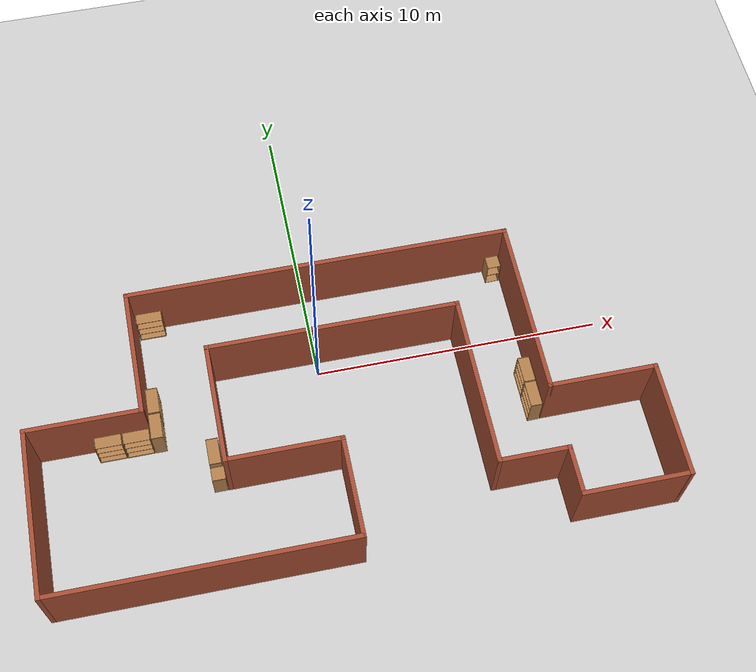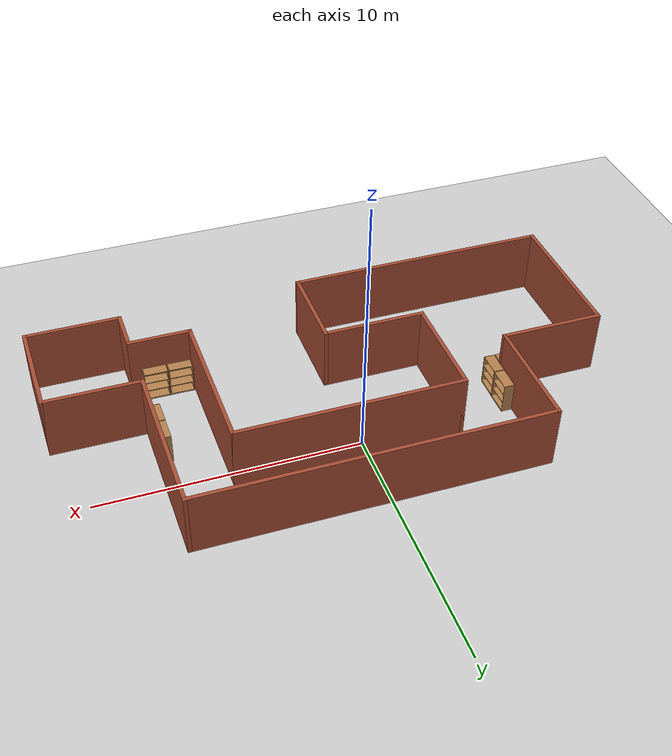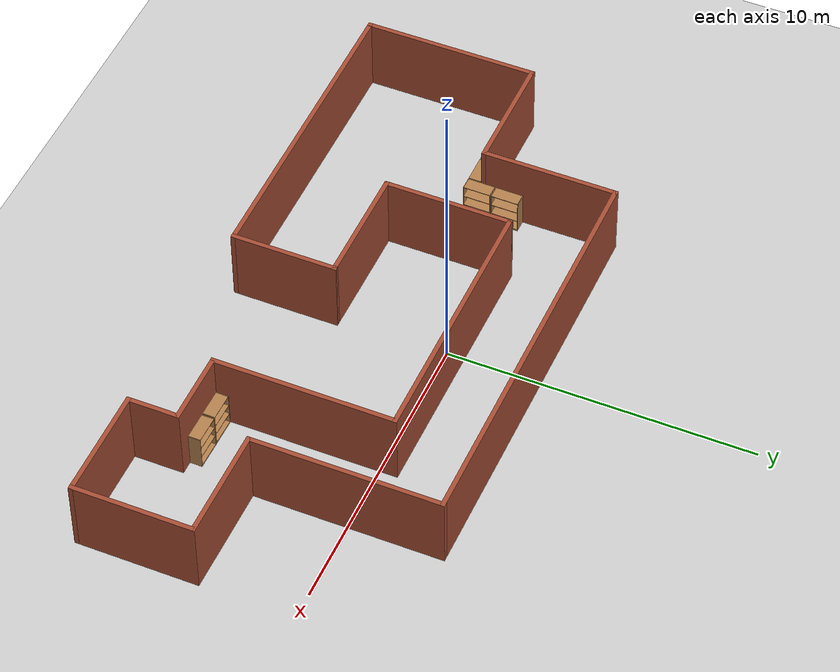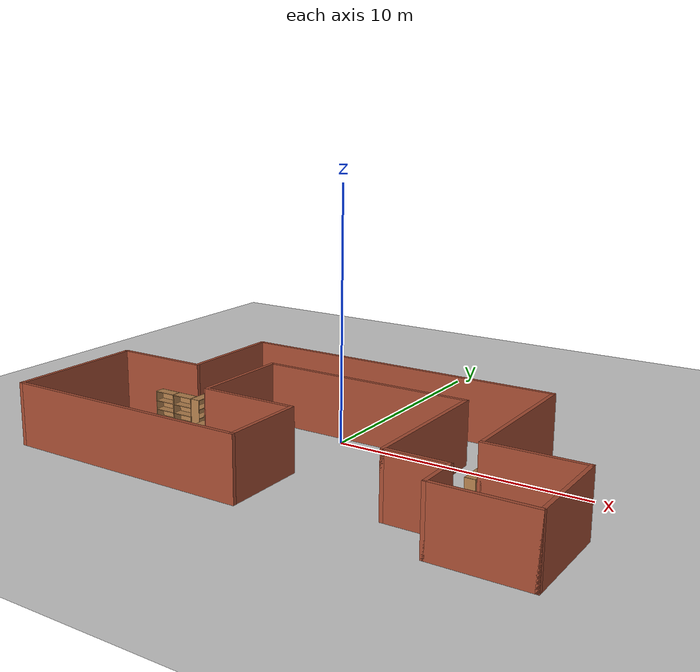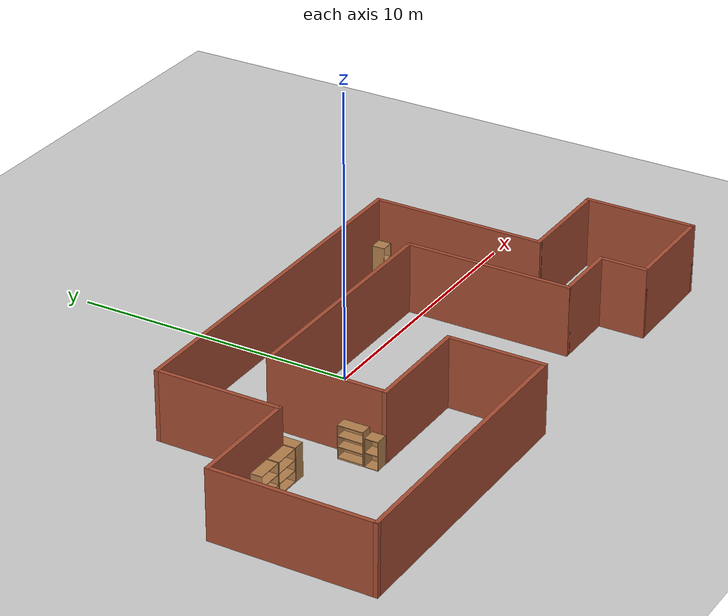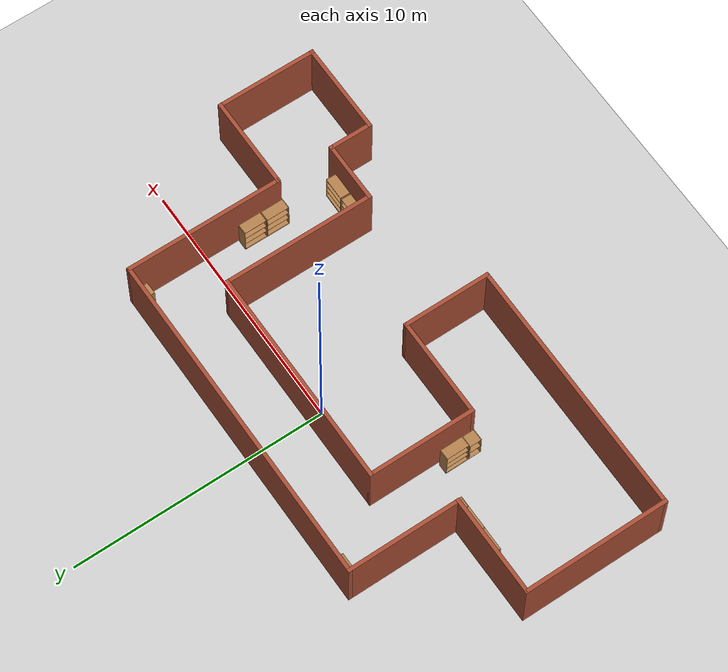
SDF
<sdf version="1.7">
 <world name="default">
  <light name="sun" type="directional">
   <pose>0 0 10 0 -0 0</pose>
   <diffuse>0.8 0.8 0.8 1</diffuse>
   <specular>0.2 0.2 0.2 1</specular>
   <attenuation>
    <range>1000</range>
    <constant>0.9</constant>
    <linear>0.01</linear>
    <quadratic>0.001</quadratic>
   </attenuation>
   <direction>-0.5 0.1 -0.9</direction>
   <spot><inner_angle>0</inner_angle><outer_angle>0</outer_angle><falloff>0</falloff></spot>
  </light>
  <model name="ground_plane">
   <static>1</static>
   <link name="link">
    <collision name="collision">
     <geometry><plane><normal>0 0 1</normal><size>100 100</size></plane></geometry>
     <surface><friction><ode><mu>100</mu><mu2>50</mu2></ode></friction></surface>
    </collision>
    <visual name="visual">
     <cast_shadows>0</cast_shadows>
     <geometry><plane><normal>0 0 1</normal><size>100 100</size></plane></geometry>
     <material>
      <script><uri>file://media/materials/scripts/gazebo.material</uri><name>Gazebo/Grey</name></script>
     </material>
    </visual>
   </link>
  </model>
  <gravity>0 0 -9.8</gravity>
  <magnetic_field>6e-06 2.3e-05 -4.2e-05</magnetic_field>
  <atmosphere type="adiabatic"/>
  <physics type="ode">
   <max_step_size>0.001</max_step_size>
   <real_time_factor>1</real_time_factor>
   <real_time_update_rate>1000</real_time_update_rate>
  </physics>
  <scene><ambient>0.4 0.4 0.4 1</ambient><background>0.7 0.7 0.7 1</background><shadows>1</shadows></scene>
  <spherical_coordinates>
   <surface_model>EARTH_WGS84</surface_model>
   <latitude_deg>0</latitude_deg>
   <longitude_deg>0</longitude_deg>
   <elevation>0</elevation>
   <heading_deg>0</heading_deg>
  </spherical_coordinates>
  <model name="env1">
   <pose>0.474 -1.97851 0 0 -0 0</pose>
   <link name="Wall_12">
    <collision name="Wall_12_Collision">
     <geometry><box><size>13.4468 0.15 2.5</size></box></geometry>
     <pose>0 0 1.25 0 -0 0</pose>
    </collision>
    <visual name="Wall_12_Visual">
     <pose>0 0 1.25 0 -0 0</pose>
     <geometry><box><size>13.4468 0.15 2.5</size></box></geometry>
     <material>
      <script><uri>file://media/materials/scripts/gazebo.material</uri><name>Gazebo/Bricks</name></script>
      <ambient>1 1 1 1</ambient>
     </material>
     <meta><layer>0</layer></meta>
    </visual>
    <pose>0.125 4.975 0 0 -0 3.14159</pose>
   </link>
   <link name="Wall_18">
    <collision name="Wall_18_Collision">
     <geometry><box><size>6.25 0.15 2.5</size></box></geometry>
     <pose>0 0 1.25 0 -0 0</pose>
    </collision>
    <visual name="Wall_18_Visual">
     <pose>0 0 1.25 0 -0 0</pose>
     <geometry><box><size>6.25 0.15 2.5</size></box></geometry>
     <material>
      <script><uri>file://media/materials/scripts/gazebo.material</uri><name>Gazebo/Bricks</name></script>
      <ambient>1 1 1 1</ambient>
     </material>
     <meta><layer>0</layer></meta>
    </visual>
    <pose>6.7734 1.925 0 0 -0 -1.5708</pose>
   </link>
   <link name="Wall_19">
    <collision name="Wall_19_Collision">
     <geometry><box><size>3.75 0.15 2.5</size></box></geometry>
     <pose>0 0 1.25 0 -0 0</pose>
    </collision>
    <visual name="Wall_19_Visual">
     <pose>0 0 1.25 0 -0 0</pose>
     <geometry><box><size>3.75 0.15 2.5</size></box></geometry>
     <material>
      <script><uri>file://media/materials/scripts/gazebo.material</uri><name>Gazebo/Bricks</name></script>
      <ambient>1 1 1 1</ambient>
     </material>
     <meta><layer>0</layer></meta>
    </visual>
    <pose>8.5734 -1.125 0 0 -0 0</pose>
   </link>
   <link name="Wall_20">
    <collision name="Wall_20_Collision">
     <geometry><box><size>4 0.15 2.5</size></box></geometry>
     <pose>0 0 1.25 0 -0 0</pose>
    </collision>
    <visual name="Wall_20_Visual">
     <pose>0 0 1.25 0 -0 0</pose>
     <geometry><box><size>4 0.15 2.5</size></box></geometry>
     <material>
      <script><uri>file://media/materials/scripts/gazebo.material</uri><name>Gazebo/Bricks</name></script>
      <ambient>1 1 1 1</ambient>
     </material>
     <meta><layer>0</layer></meta>
    </visual>
    <pose>10.3734 -3.05 0 0 -0 -1.5708</pose>
   </link>
   <link name="Wall_23">
    <collision name="Wall_23_Collision">
     <geometry><box><size>1.75 0.15 2.5</size></box></geometry>
     <pose>0 0 1.25 0 -0 0</pose>
    </collision>
    <visual name="Wall_23_Visual">
     <pose>0 0 1.25 0 -0 0</pose>
     <geometry><box><size>1.75 0.15 2.5</size></box></geometry>
     <material>
      <script><uri>file://media/materials/scripts/gazebo.material</uri><name>Gazebo/Bricks</name></script>
      <ambient>1 1 1 1</ambient>
     </material>
     <meta><layer>0</layer></meta>
    </visual>
    <pose>6.8 -4.175 0 0 -0 -1.5708</pose>
   </link>
   <link name="Wall_24">
    <collision name="Wall_24_Collision">
     <geometry><box><size>3.7234 0.15 2.5</size></box></geometry>
     <pose>0 0 1.25 0 -0 0</pose>
    </collision>
    <visual name="Wall_24_Visual">
     <pose>0 0 1.25 0 -0 0</pose>
     <geometry><box><size>3.7234 0.15 2.5</size></box></geometry>
     <material>
      <script><uri>file://media/materials/scripts/gazebo.material</uri><name>Gazebo/Bricks</name></script>
      <ambient>1 1 1 1</ambient>
     </material>
     <meta><layer>0</layer></meta>
    </visual>
    <pose>8.5867 -4.975 0 0 -0 0</pose>
   </link>
   <link name="Wall_3">
    <collision name="Wall_3_Collision">
     <geometry><box><size>4.25 0.15 2.5</size></box></geometry>
     <pose>0 0 1.25 0 -0 0</pose>
    </collision>
    <visual name="Wall_3_Visual">
     <pose>0 0 1.25 0 -0 0</pose>
     <geometry><box><size>4.25 0.15 2.5</size></box></geometry>
     <material>
      <script><uri>file://media/materials/scripts/gazebo.material</uri><name>Gazebo/Bricks</name></script>
      <ambient>1 1 1 1</ambient>
     </material>
     <meta><layer>0</layer></meta>
    </visual>
    <pose>-4.1234 0.425 0 0 -0 1.5708</pose>
   </link>
   <link name="Wall_32">
    <collision name="Wall_32_Collision">
     <geometry><box><size>4.5 0.15 2.5</size></box></geometry>
     <pose>0 0 1.25 0 -0 0</pose>
    </collision>
    <visual name="Wall_32_Visual">
     <pose>0 0 1.25 0 -0 0</pose>
     <geometry><box><size>4.5 0.15 2.5</size></box></geometry>
     <material>
      <script><uri>file://media/materials/scripts/gazebo.material</uri><name>Gazebo/Bricks</name></script>
      <ambient>1 1 1 1</ambient>
     </material>
     <meta><layer>0</layer></meta>
    </visual>
    <pose>-6.5234 2.8 0 0 -0 -1.5708</pose>
   </link>
   <link name="Wall_33">
    <collision name="Wall_33_Collision">
     <geometry><box><size>4 0.15 2.5</size></box></geometry>
     <pose>0 0 1.25 0 -0 0</pose>
    </collision>
    <visual name="Wall_33_Visual">
     <pose>0 0 1.25 0 -0 0</pose>
     <geometry><box><size>4 0.15 2.5</size></box></geometry>
     <material>
      <script><uri>file://media/materials/scripts/gazebo.material</uri><name>Gazebo/Bricks</name></script>
      <ambient>1 1 1 1</ambient>
     </material>
     <meta><layer>0</layer></meta>
    </visual>
    <pose>-8.4484 0.625 0 0 -0 3.14159</pose>
   </link>
   <link name="Wall_35">
    <collision name="Wall_35_Collision">
     <geometry><box><size>4 0.15 2.5</size></box></geometry>
     <pose>0 0 1.25 0 -0 0</pose>
    </collision>
    <visual name="Wall_35_Visual">
     <pose>0 0 1.25 0 -0 0</pose>
     <geometry><box><size>4 0.15 2.5</size></box></geometry>
     <material>
      <script><uri>file://media/materials/scripts/gazebo.material</uri><name>Gazebo/Bricks</name></script>
      <ambient>1 1 1 1</ambient>
     </material>
     <meta><layer>0</layer></meta>
    </visual>
    <pose>-2.1984 -1.625 0 0 -0 0</pose>
   </link>
   <link name="Wall_4">
    <collision name="Wall_4_Collision">
     <geometry><box><size>8.75 0.15 2.5</size></box></geometry>
     <pose>0 0 1.25 0 -0 0</pose>
    </collision>
    <visual name="Wall_4_Visual">
     <pose>0 0 1.25 0 -0 0</pose>
     <geometry><box><size>8.75 0.15 2.5</size></box></geometry>
     <material>
      <script><uri>file://media/materials/scripts/gazebo.material</uri><name>Gazebo/Bricks</name></script>
      <ambient>1 1 1 1</ambient>
     </material>
     <meta><layer>0</layer></meta>
    </visual>
    <pose>0.1766 2.475 0 0 -0 0</pose>
   </link>
   <link name="Wall_40">
    <collision name="Wall_40_Collision">
     <geometry><box><size>3.5 0.15 2.5</size></box></geometry>
     <pose>0 0 1.25 0 -0 0</pose>
    </collision>
    <visual name="Wall_40_Visual">
     <pose>0 0 1.25 0 -0 0</pose>
     <geometry><box><size>3.5 0.15 2.5</size></box></geometry>
     <material>
      <script><uri>file://media/materials/scripts/gazebo.material</uri><name>Gazebo/Bricks</name></script>
      <ambient>1 1 1 1</ambient>
     </material>
     <meta><layer>0</layer></meta>
    </visual>
    <pose>-0.2734 -3.3 0 0 -0 -1.5708</pose>
   </link>
   <link name="Wall_42">
    <collision name="Wall_42_Collision">
     <geometry><box><size>10.25 0.15 2.5</size></box></geometry>
     <pose>0 0 1.25 0 -0 0</pose>
    </collision>
    <visual name="Wall_42_Visual">
     <pose>0 0 1.25 0 -0 0</pose>
     <geometry><box><size>10.25 0.15 2.5</size></box></geometry>
     <material>
      <script><uri>file://media/materials/scripts/gazebo.material</uri><name>Gazebo/Bricks</name></script>
      <ambient>1 1 1 1</ambient>
     </material>
     <meta><layer>0</layer></meta>
    </visual>
    <pose>-5.3234 -4.975 0 0 -0 3.14159</pose>
   </link>
   <link name="Wall_43">
    <collision name="Wall_43_Collision">
     <geometry><box><size>5.75 0.15 2.5</size></box></geometry>
     <pose>0 0 1.25 0 -0 0</pose>
    </collision>
    <visual name="Wall_43_Visual">
     <pose>0 0 1.25 0 -0 0</pose>
     <geometry><box><size>5.75 0.15 2.5</size></box></geometry>
     <material>
      <script><uri>file://media/materials/scripts/gazebo.material</uri><name>Gazebo/Bricks</name></script>
      <ambient>1 1 1 1</ambient>
     </material>
     <meta><layer>0</layer></meta>
    </visual>
    <pose>-10.3734 -2.175 0 0 -0 1.5708</pose>
   </link>
   <link name="Wall_5">
    <collision name="Wall_5_Collision">
     <geometry><box><size>6 0.15 2.5</size></box></geometry>
     <pose>0 0 1.25 0 -0 0</pose>
    </collision>
    <visual name="Wall_5_Visual">
     <pose>0 0 1.25 0 -0 0</pose>
     <geometry><box><size>6 0.15 2.5</size></box></geometry>
     <material>
      <script><uri>file://media/materials/scripts/gazebo.material</uri><name>Gazebo/Bricks</name></script>
      <ambient>1 1 1 1</ambient>
     </material>
     <meta><layer>0</layer></meta>
    </visual>
    <pose>4.4766 -0.45 0 0 -0 -1.5708</pose>
   </link>
   <link name="Wall_7">
    <collision name="Wall_7_Collision">
     <geometry><box><size>2.4734 0.15 2.5</size></box></geometry>
     <pose>0 0 1.25 0 -0 0</pose>
    </collision>
    <visual name="Wall_7_Visual">
     <pose>0 0 1.25 0 -0 0</pose>
     <geometry><box><size>2.4734 0.15 2.5</size></box></geometry>
     <material>
      <script><uri>file://media/materials/scripts/gazebo.material</uri><name>Gazebo/Bricks</name></script>
      <ambient>1 1 1 1</ambient>
     </material>
     <meta><layer>0</layer></meta>
    </visual>
    <pose>5.6383 -3.375 0 0 -0 0</pose>
   </link>
   <static>1</static>
  </model>
  <model name="bookshelf">
   <static>1</static>
   <link name="link">
    <inertial><mass>1</mass></inertial>
    <collision name="back">
     <pose>0 0.005 0.6 0 -0 0</pose>
     <geometry><box><size>0.9 0.01 1.2</size></box></geometry>
    </collision>
    <visual name="visual1">
     <pose>0 0.005 0.6 0 -0 0</pose>
     <geometry><box><size>0.9 0.01 1.2</size></box></geometry>
     <material>
      <script><uri>file://media/materials/scripts/gazebo.material</uri><name>Gazebo/Wood</name></script>
     </material>
    </visual>
    <collision name="left_side">
     <pose>0.45 -0.195 0.6 0 -0 0</pose>
     <geometry><box><size>0.02 0.4 1.2</size></box></geometry>
    </collision>
    <visual name="visual2">
     <pose>0.45 -0.195 0.6 0 -0 0</pose>
     <geometry><box><size>0.02 0.4 1.2</size></box></geometry>
     <material>
      <script><uri>file://media/materials/scripts/gazebo.material</uri><name>Gazebo/Wood</name></script>
     </material>
    </visual>
    <collision name="right_side">
     <pose>-0.45 -0.195 0.6 0 -0 0</pose>
     <geometry><box><size>0.02 0.4 1.2</size></box></geometry>
    </collision>
    <visual name="visual3">
     <pose>-0.45 -0.195 0.6 0 -0 0</pose>
     <geometry><box><size>0.02 0.4 1.2</size></box></geometry>
     <material>
      <script><uri>file://media/materials/scripts/gazebo.material</uri><name>Gazebo/Wood</name></script>
     </material>
    </visual>
    <collision name="bottom">
     <pose>0 -0.195 0.03 0 -0 0</pose>
     <geometry><box><size>0.88 0.4 0.06</size></box></geometry>
    </collision>
    <visual name="visual4">
     <pose>0 -0.195 0.03 0 -0 0</pose>
     <geometry><box><size>0.88 0.4 0.06</size></box></geometry>
     <material>
      <script><uri>file://media/materials/scripts/gazebo.material</uri><name>Gazebo/Wood</name></script>
     </material>
    </visual>
    <collision name="top">
     <pose>0 -0.195 1.19 0 -0 0</pose>
     <geometry><box><size>0.88 0.4 0.02</size></box></geometry>
    </collision>
    <visual name="visual5">
     <pose>0 -0.195 1.19 0 -0 0</pose>
     <geometry><box><size>0.88 0.4 0.02</size></box></geometry>
     <material>
      <script><uri>file://media/materials/scripts/gazebo.material</uri><name>Gazebo/Wood</name></script>
     </material>
    </visual>
    <collision name="low_shelf">
     <pose>0 -0.195 0.43 0 -0 0</pose>
     <geometry><box><size>0.88 0.4 0.02</size></box></geometry>
    </collision>
    <visual name="visual6">
     <pose>0 -0.195 0.43 0 -0 0</pose>
     <geometry><box><size>0.88 0.4 0.02</size></box></geometry>
     <material>
      <script><uri>file://media/materials/scripts/gazebo.material</uri><name>Gazebo/Wood</name></script>
     </material>
    </visual>
    <collision name="high_shelf">
     <pose>0 -0.195 0.8 0 -0 0</pose>
     <geometry><box><size>0.88 0.4 0.02</size></box></geometry>
    </collision>
    <visual name="visual7">
     <pose>0 -0.195 0.8 0 -0 0</pose>
     <geometry><box><size>0.88 0.4 0.02</size></box></geometry>
     <material>
      <script><uri>file://media/materials/scripts/gazebo.material</uri><name>Gazebo/Wood</name></script>
     </material>
    </visual>
   </link>
   <pose>-6.45414 -1.46584 0 0 -0 0.002664</pose>
  </model>
  <model name="cabinet">
   <static>1</static>
   <link name="cabinet_bottom_plate">
    <inertial>
     <pose>0 0 -1 0 -0 0</pose>
     <inertia><ixx>2.05</ixx><ixy>0</ixy><ixz>0</ixz><iyy>2.05</iyy><iyz>0</iyz><izz>2.05</izz></inertia>
     <mass>25</mass>
    </inertial>
    <collision name="cabinet_bottom_plate_geom">
     <pose>0 0 0.01 0 -0 0</pose>
     <geometry><box><size>0.45 0.45 0.02</size></box></geometry>
    </collision>
    <visual name="cabinet_bottom_plate_geom_visual">
     <pose>0 0 0.01 0 -0 0</pose>
     <geometry><box><size>0.45 0.45 0.02</size></box></geometry>
     <material>
      <script><uri>file://media/materials/scripts/gazebo.material</uri><name>Gazebo/Wood</name></script>
     </material>
    </visual>
    <collision name="cabinet_bottom_plate_geom_cabinet_back_plate">
     <pose>0.235 0 0.51 0 -0 0</pose>
     <geometry><box><size>0.02 0.45 1.02</size></box></geometry>
    </collision>
    <visual name="cabinet_bottom_plate_geom_cabinet_back_plate_visual">
     <pose>0.235 0 0.51 0 -0 0</pose>
     <geometry><box><size>0.02 0.45 1.02</size></box></geometry>
     <material>
      <script><uri>file://media/materials/scripts/gazebo.material</uri><name>Gazebo/Wood</name></script>
     </material>
    </visual>
    <collision name="cabinet_bottom_plate_geom_cabinet_left_plate">
     <pose>0 0.235 0.51 0 -0 0</pose>
     <geometry><box><size>0.45 0.02 1.02</size></box></geometry>
    </collision>
    <visual name="cabinet_bottom_plate_geom_cabinet_left_plate_visual">
     <pose>0 0.235 0.51 0 -0 0</pose>
     <geometry><box><size>0.45 0.02 1.02</size></box></geometry>
     <material>
      <script><uri>file://media/materials/scripts/gazebo.material</uri><name>Gazebo/Wood</name></script>
     </material>
    </visual>
    <collision name="cabinet_bottom_plate_geom_cabinet_middle_plate">
     <pose>0 0 0.51 0 -0 0</pose>
     <geometry><box><size>0.45 0.45 0.02</size></box></geometry>
    </collision>
    <visual name="cabinet_bottom_plate_geom_cabinet_middle_plate_visual">
     <pose>0 0 0.51 0 -0 0</pose>
     <geometry><box><size>0.45 0.45 0.02</size></box></geometry>
     <material>
      <script><uri>file://media/materials/scripts/gazebo.material</uri><name>Gazebo/Wood</name></script>
     </material>
    </visual>
    <collision name="cabinet_bottom_plate_geom_cabinet_right_plate">
     <pose>0 -0.235 0.51 0 -0 0</pose>
     <geometry><box><size>0.45 0.02 1.02</size></box></geometry>
    </collision>
    <visual name="cabinet_bottom_plate_geom_cabinet_right_plate_visual">
     <pose>0 -0.235 0.51 0 -0 0</pose>
     <geometry><box><size>0.45 0.02 1.02</size></box></geometry>
     <material>
      <script><uri>file://media/materials/scripts/gazebo.material</uri><name>Gazebo/Wood</name></script>
     </material>
    </visual>
    <collision name="cabinet_bottom_plate_geom_cabinet_top_plate">
     <pose>0 0 1.01 0 -0 0</pose>
     <geometry><box><size>0.45 0.45 0.02</size></box></geometry>
    </collision>
    <visual name="cabinet_bottom_plate_geom_cabinet_top_plate_visual">
     <pose>0 0 1.01 0 -0 0</pose>
     <geometry><box><size>0.45 0.45 0.02</size></box></geometry>
     <material>
      <script><uri>file://media/materials/scripts/gazebo.material</uri><name>Gazebo/Wood</name></script>
     </material>
    </visual>
   </link>
   <pose>-3.98 -3.42601 0 0 -0 0</pose>
  </model>
  <model name="bookshelf_clone">
   <static>1</static>
   <link name="link">
    <inertial><mass>1</mass></inertial>
    <collision name="back">
     <pose>0 0.005 0.6 0 -0 0</pose>
     <geometry><box><size>0.9 0.01 1.2</size></box></geometry>
    </collision>
    <visual name="visual1">
     <pose>0 0.005 0.6 0 -0 0</pose>
     <geometry><box><size>0.9 0.01 1.2</size></box></geometry>
     <material>
      <script><uri>file://media/materials/scripts/gazebo.material</uri><name>Gazebo/Wood</name></script>
     </material>
    </visual>
    <collision name="left_side">
     <pose>0.45 -0.195 0.6 0 -0 0</pose>
     <geometry><box><size>0.02 0.4 1.2</size></box></geometry>
    </collision>
    <visual name="visual2">
     <pose>0.45 -0.195 0.6 0 -0 0</pose>
     <geometry><box><size>0.02 0.4 1.2</size></box></geometry>
     <material>
      <script><uri>file://media/materials/scripts/gazebo.material</uri><name>Gazebo/Wood</name></script>
     </material>
    </visual>
    <collision name="right_side">
     <pose>-0.45 -0.195 0.6 0 -0 0</pose>
     <geometry><box><size>0.02 0.4 1.2</size></box></geometry>
    </collision>
    <visual name="visual3">
     <pose>-0.45 -0.195 0.6 0 -0 0</pose>
     <geometry><box><size>0.02 0.4 1.2</size></box></geometry>
     <material>
      <script><uri>file://media/materials/scripts/gazebo.material</uri><name>Gazebo/Wood</name></script>
     </material>
    </visual>
    <collision name="bottom">
     <pose>0 -0.195 0.03 0 -0 0</pose>
     <geometry><box><size>0.88 0.4 0.06</size></box></geometry>
    </collision>
    <visual name="visual4">
     <pose>0 -0.195 0.03 0 -0 0</pose>
     <geometry><box><size>0.88 0.4 0.06</size></box></geometry>
     <material>
      <script><uri>file://media/materials/scripts/gazebo.material</uri><name>Gazebo/Wood</name></script>
     </material>
    </visual>
    <collision name="top">
     <pose>0 -0.195 1.19 0 -0 0</pose>
     <geometry><box><size>0.88 0.4 0.02</size></box></geometry>
    </collision>
    <visual name="visual5">
     <pose>0 -0.195 1.19 0 -0 0</pose>
     <geometry><box><size>0.88 0.4 0.02</size></box></geometry>
     <material>
      <script><uri>file://media/materials/scripts/gazebo.material</uri><name>Gazebo/Wood</name></script>
     </material>
    </visual>
    <collision name="low_shelf">
     <pose>0 -0.195 0.43 0 -0 0</pose>
     <geometry><box><size>0.88 0.4 0.02</size></box></geometry>
    </collision>
    <visual name="visual6">
     <pose>0 -0.195 0.43 0 -0 0</pose>
     <geometry><box><size>0.88 0.4 0.02</size></box></geometry>
     <material>
      <script><uri>file://media/materials/scripts/gazebo.material</uri><name>Gazebo/Wood</name></script>
     </material>
    </visual>
    <collision name="high_shelf">
     <pose>0 -0.195 0.8 0 -0 0</pose>
     <geometry><box><size>0.88 0.4 0.02</size></box></geometry>
    </collision>
    <visual name="visual7">
     <pose>0 -0.195 0.8 0 -0 0</pose>
     <geometry><box><size>0.88 0.4 0.02</size></box></geometry>
     <material>
      <script><uri>file://media/materials/scripts/gazebo.material</uri><name>Gazebo/Wood</name></script>
     </material>
    </visual>
   </link>
   <pose>-7.38846 -1.46061 0 0 -0 0</pose>
  </model>
  <model name="bookshelf_clone_0">
   <static>1</static>
   <link name="link">
    <inertial><mass>1</mass></inertial>
    <collision name="back">
     <pose>0 0.005 0.6 0 -0 0</pose>
     <geometry><box><size>0.9 0.01 1.2</size></box></geometry>
    </collision>
    <visual name="visual1">
     <pose>0 0.005 0.6 0 -0 0</pose>
     <geometry><box><size>0.9 0.01 1.2</size></box></geometry>
     <material>
      <script><uri>file://media/materials/scripts/gazebo.material</uri><name>Gazebo/Wood</name></script>
     </material>
    </visual>
    <collision name="left_side">
     <pose>0.45 -0.195 0.6 0 -0 0</pose>
     <geometry><box><size>0.02 0.4 1.2</size></box></geometry>
    </collision>
    <visual name="visual2">
     <pose>0.45 -0.195 0.6 0 -0 0</pose>
     <geometry><box><size>0.02 0.4 1.2</size></box></geometry>
     <material>
      <script><uri>file://media/materials/scripts/gazebo.material</uri><name>Gazebo/Wood</name></script>
     </material>
    </visual>
    <collision name="right_side">
     <pose>-0.45 -0.195 0.6 0 -0 0</pose>
     <geometry><box><size>0.02 0.4 1.2</size></box></geometry>
    </collision>
    <visual name="visual3">
     <pose>-0.45 -0.195 0.6 0 -0 0</pose>
     <geometry><box><size>0.02 0.4 1.2</size></box></geometry>
     <material>
      <script><uri>file://media/materials/scripts/gazebo.material</uri><name>Gazebo/Wood</name></script>
     </material>
    </visual>
    <collision name="bottom">
     <pose>0 -0.195 0.03 0 -0 0</pose>
     <geometry><box><size>0.88 0.4 0.06</size></box></geometry>
    </collision>
    <visual name="visual4">
     <pose>0 -0.195 0.03 0 -0 0</pose>
     <geometry><box><size>0.88 0.4 0.06</size></box></geometry>
     <material>
      <script><uri>file://media/materials/scripts/gazebo.material</uri><name>Gazebo/Wood</name></script>
     </material>
    </visual>
    <collision name="top">
     <pose>0 -0.195 1.19 0 -0 0</pose>
     <geometry><box><size>0.88 0.4 0.02</size></box></geometry>
    </collision>
    <visual name="visual5">
     <pose>0 -0.195 1.19 0 -0 0</pose>
     <geometry><box><size>0.88 0.4 0.02</size></box></geometry>
     <material>
      <script><uri>file://media/materials/scripts/gazebo.material</uri><name>Gazebo/Wood</name></script>
     </material>
    </visual>
    <collision name="low_shelf">
     <pose>0 -0.195 0.43 0 -0 0</pose>
     <geometry><box><size>0.88 0.4 0.02</size></box></geometry>
    </collision>
    <visual name="visual6">
     <pose>0 -0.195 0.43 0 -0 0</pose>
     <geometry><box><size>0.88 0.4 0.02</size></box></geometry>
     <material>
      <script><uri>file://media/materials/scripts/gazebo.material</uri><name>Gazebo/Wood</name></script>
     </material>
    </visual>
    <collision name="high_shelf">
     <pose>0 -0.195 0.8 0 -0 0</pose>
     <geometry><box><size>0.88 0.4 0.02</size></box></geometry>
    </collision>
    <visual name="visual7">
     <pose>0 -0.195 0.8 0 -0 0</pose>
     <geometry><box><size>0.88 0.4 0.02</size></box></geometry>
     <material>
      <script><uri>file://media/materials/scripts/gazebo.material</uri><name>Gazebo/Wood</name></script>
     </material>
    </visual>
   </link>
   <pose>-5.47889 2.94123 0 0 -0 0</pose>
  </model>
  <model name="cabinet_clone">
   <static>1</static>
   <link name="cabinet_bottom_plate">
    <inertial>
     <pose>0 0 -1 0 -0 0</pose>
     <inertia><ixx>2.05</ixx><ixy>0</ixy><ixz>0</ixz><iyy>2.05</iyy><iyz>0</iyz><izz>2.05</izz></inertia>
     <mass>25</mass>
    </inertial>
    <collision name="cabinet_bottom_plate_geom">
     <pose>0 0 0.01 0 -0 0</pose>
     <geometry><box><size>0.45 0.45 0.02</size></box></geometry>
    </collision>
    <visual name="cabinet_bottom_plate_geom_visual">
     <pose>0 0 0.01 0 -0 0</pose>
     <geometry><box><size>0.45 0.45 0.02</size></box></geometry>
     <material>
      <script><uri>file://media/materials/scripts/gazebo.material</uri><name>Gazebo/Wood</name></script>
     </material>
    </visual>
    <collision name="cabinet_bottom_plate_geom_cabinet_back_plate">
     <pose>0.235 0 0.51 0 -0 0</pose>
     <geometry><box><size>0.02 0.45 1.02</size></box></geometry>
    </collision>
    <visual name="cabinet_bottom_plate_geom_cabinet_back_plate_visual">
     <pose>0.235 0 0.51 0 -0 0</pose>
     <geometry><box><size>0.02 0.45 1.02</size></box></geometry>
     <material>
      <script><uri>file://media/materials/scripts/gazebo.material</uri><name>Gazebo/Wood</name></script>
     </material>
    </visual>
    <collision name="cabinet_bottom_plate_geom_cabinet_left_plate">
     <pose>0 0.235 0.51 0 -0 0</pose>
     <geometry><box><size>0.45 0.02 1.02</size></box></geometry>
    </collision>
    <visual name="cabinet_bottom_plate_geom_cabinet_left_plate_visual">
     <pose>0 0.235 0.51 0 -0 0</pose>
     <geometry><box><size>0.45 0.02 1.02</size></box></geometry>
     <material>
      <script><uri>file://media/materials/scripts/gazebo.material</uri><name>Gazebo/Wood</name></script>
     </material>
    </visual>
    <collision name="cabinet_bottom_plate_geom_cabinet_middle_plate">
     <pose>0 0 0.51 0 -0 0</pose>
     <geometry><box><size>0.45 0.45 0.02</size></box></geometry>
    </collision>
    <visual name="cabinet_bottom_plate_geom_cabinet_middle_plate_visual">
     <pose>0 0 0.51 0 -0 0</pose>
     <geometry><box><size>0.45 0.45 0.02</size></box></geometry>
     <material>
      <script><uri>file://media/materials/scripts/gazebo.material</uri><name>Gazebo/Wood</name></script>
     </material>
    </visual>
    <collision name="cabinet_bottom_plate_geom_cabinet_right_plate">
     <pose>0 -0.235 0.51 0 -0 0</pose>
     <geometry><box><size>0.45 0.02 1.02</size></box></geometry>
    </collision>
    <visual name="cabinet_bottom_plate_geom_cabinet_right_plate_visual">
     <pose>0 -0.235 0.51 0 -0 0</pose>
     <geometry><box><size>0.45 0.02 1.02</size></box></geometry>
     <material>
      <script><uri>file://media/materials/scripts/gazebo.material</uri><name>Gazebo/Wood</name></script>
     </material>
    </visual>
    <collision name="cabinet_bottom_plate_geom_cabinet_top_plate">
     <pose>0 0 1.01 0 -0 0</pose>
     <geometry><box><size>0.45 0.45 0.02</size></box></geometry>
    </collision>
    <visual name="cabinet_bottom_plate_geom_cabinet_top_plate_visual">
     <pose>0 0 1.01 0 -0 0</pose>
     <geometry><box><size>0.45 0.45 0.02</size></box></geometry>
     <material>
      <script><uri>file://media/materials/scripts/gazebo.material</uri><name>Gazebo/Wood</name></script>
     </material>
    </visual>
   </link>
   <pose>6.88424 2.6642 0 0 -0 1.59523</pose>
  </model>
  <model name="bookshelf_clone_1">
   <static>1</static>
   <link name="link">
    <inertial><mass>1</mass></inertial>
    <collision name="back">
     <pose>0 0.005 0.6 0 -0 0</pose>
     <geometry><box><size>0.9 0.01 1.2</size></box></geometry>
    </collision>
    <visual name="visual1">
     <pose>0 0.005 0.6 0 -0 0</pose>
     <geometry><box><size>0.9 0.01 1.2</size></box></geometry>
     <material>
      <script><uri>file://media/materials/scripts/gazebo.material</uri><name>Gazebo/Wood</name></script>
     </material>
    </visual>
    <collision name="left_side">
     <pose>0.45 -0.195 0.6 0 -0 0</pose>
     <geometry><box><size>0.02 0.4 1.2</size></box></geometry>
    </collision>
    <visual name="visual2">
     <pose>0.45 -0.195 0.6 0 -0 0</pose>
     <geometry><box><size>0.02 0.4 1.2</size></box></geometry>
     <material>
      <script><uri>file://media/materials/scripts/gazebo.material</uri><name>Gazebo/Wood</name></script>
     </material>
    </visual>
    <collision name="right_side">
     <pose>-0.45 -0.195 0.6 0 -0 0</pose>
     <geometry><box><size>0.02 0.4 1.2</size></box></geometry>
    </collision>
    <visual name="visual3">
     <pose>-0.45 -0.195 0.6 0 -0 0</pose>
     <geometry><box><size>0.02 0.4 1.2</size></box></geometry>
     <material>
      <script><uri>file://media/materials/scripts/gazebo.material</uri><name>Gazebo/Wood</name></script>
     </material>
    </visual>
    <collision name="bottom">
     <pose>0 -0.195 0.03 0 -0 0</pose>
     <geometry><box><size>0.88 0.4 0.06</size></box></geometry>
    </collision>
    <visual name="visual4">
     <pose>0 -0.195 0.03 0 -0 0</pose>
     <geometry><box><size>0.88 0.4 0.06</size></box></geometry>
     <material>
      <script><uri>file://media/materials/scripts/gazebo.material</uri><name>Gazebo/Wood</name></script>
     </material>
    </visual>
    <collision name="top">
     <pose>0 -0.195 1.19 0 -0 0</pose>
     <geometry><box><size>0.88 0.4 0.02</size></box></geometry>
    </collision>
    <visual name="visual5">
     <pose>0 -0.195 1.19 0 -0 0</pose>
     <geometry><box><size>0.88 0.4 0.02</size></box></geometry>
     <material>
      <script><uri>file://media/materials/scripts/gazebo.material</uri><name>Gazebo/Wood</name></script>
     </material>
    </visual>
    <collision name="low_shelf">
     <pose>0 -0.195 0.43 0 -0 0</pose>
     <geometry><box><size>0.88 0.4 0.02</size></box></geometry>
    </collision>
    <visual name="visual6">
     <pose>0 -0.195 0.43 0 -0 0</pose>
     <geometry><box><size>0.88 0.4 0.02</size></box></geometry>
     <material>
      <script><uri>file://media/materials/scripts/gazebo.material</uri><name>Gazebo/Wood</name></script>
     </material>
    </visual>
    <collision name="high_shelf">
     <pose>0 -0.195 0.8 0 -0 0</pose>
     <geometry><box><size>0.88 0.4 0.02</size></box></geometry>
    </collision>
    <visual name="visual7">
     <pose>0 -0.195 0.8 0 -0 0</pose>
     <geometry><box><size>0.88 0.4 0.02</size></box></geometry>
     <material>
      <script><uri>file://media/materials/scripts/gazebo.material</uri><name>Gazebo/Wood</name></script>
     </material>
    </visual>
   </link>
   <pose>-5.96392 -1.40154 0 0 -0 1.56375</pose>
  </model>
  <model name="bookshelf_clone_1_clone">
   <static>1</static>
   <link name="link">
    <inertial><mass>1</mass></inertial>
    <collision name="back">
     <pose>0 0.005 0.6 0 -0 0</pose>
     <geometry><box><size>0.9 0.01 1.2</size></box></geometry>
    </collision>
    <visual name="visual1">
     <pose>0 0.005 0.6 0 -0 0</pose>
     <geometry><box><size>0.9 0.01 1.2</size></box></geometry>
     <material>
      <script><uri>file://media/materials/scripts/gazebo.material</uri><name>Gazebo/Wood</name></script>
     </material>
    </visual>
    <collision name="left_side">
     <pose>0.45 -0.195 0.6 0 -0 0</pose>
     <geometry><box><size>0.02 0.4 1.2</size></box></geometry>
    </collision>
    <visual name="visual2">
     <pose>0.45 -0.195 0.6 0 -0 0</pose>
     <geometry><box><size>0.02 0.4 1.2</size></box></geometry>
     <material>
      <script><uri>file://media/materials/scripts/gazebo.material</uri><name>Gazebo/Wood</name></script>
     </material>
    </visual>
    <collision name="right_side">
     <pose>-0.45 -0.195 0.6 0 -0 0</pose>
     <geometry><box><size>0.02 0.4 1.2</size></box></geometry>
    </collision>
    <visual name="visual3">
     <pose>-0.45 -0.195 0.6 0 -0 0</pose>
     <geometry><box><size>0.02 0.4 1.2</size></box></geometry>
     <material>
      <script><uri>file://media/materials/scripts/gazebo.material</uri><name>Gazebo/Wood</name></script>
     </material>
    </visual>
    <collision name="bottom">
     <pose>0 -0.195 0.03 0 -0 0</pose>
     <geometry><box><size>0.88 0.4 0.06</size></box></geometry>
    </collision>
    <visual name="visual4">
     <pose>0 -0.195 0.03 0 -0 0</pose>
     <geometry><box><size>0.88 0.4 0.06</size></box></geometry>
     <material>
      <script><uri>file://media/materials/scripts/gazebo.material</uri><name>Gazebo/Wood</name></script>
     </material>
    </visual>
    <collision name="top">
     <pose>0 -0.195 1.19 0 -0 0</pose>
     <geometry><box><size>0.88 0.4 0.02</size></box></geometry>
    </collision>
    <visual name="visual5">
     <pose>0 -0.195 1.19 0 -0 0</pose>
     <geometry><box><size>0.88 0.4 0.02</size></box></geometry>
     <material>
      <script><uri>file://media/materials/scripts/gazebo.material</uri><name>Gazebo/Wood</name></script>
     </material>
    </visual>
    <collision name="low_shelf">
     <pose>0 -0.195 0.43 0 -0 0</pose>
     <geometry><box><size>0.88 0.4 0.02</size></box></geometry>
    </collision>
    <visual name="visual6">
     <pose>0 -0.195 0.43 0 -0 0</pose>
     <geometry><box><size>0.88 0.4 0.02</size></box></geometry>
     <material>
      <script><uri>file://media/materials/scripts/gazebo.material</uri><name>Gazebo/Wood</name></script>
     </material>
    </visual>
    <collision name="high_shelf">
     <pose>0 -0.195 0.8 0 -0 0</pose>
     <geometry><box><size>0.88 0.4 0.02</size></box></geometry>
    </collision>
    <visual name="visual7">
     <pose>0 -0.195 0.8 0 -0 0</pose>
     <geometry><box><size>0.88 0.4 0.02</size></box></geometry>
     <material>
      <script><uri>file://media/materials/scripts/gazebo.material</uri><name>Gazebo/Wood</name></script>
     </material>
    </visual>
   </link>
   <pose>-5.95104 -0.462784 0 0 -0 1.56375</pose>
  </model>
  <model name="bookshelf_clone_2">
   <static>1</static>
   <link name="link">
    <inertial><mass>1</mass></inertial>
    <collision name="back">
     <pose>0 0.005 0.6 0 -0 0</pose>
     <geometry><box><size>0.9 0.01 1.2</size></box></geometry>
    </collision>
    <visual name="visual1">
     <pose>0 0.005 0.6 0 -0 0</pose>
     <geometry><box><size>0.9 0.01 1.2</size></box></geometry>
     <material>
      <script><uri>file://media/materials/scripts/gazebo.material</uri><name>Gazebo/Wood</name></script>
     </material>
    </visual>
    <collision name="left_side">
     <pose>0.45 -0.195 0.6 0 -0 0</pose>
     <geometry><box><size>0.02 0.4 1.2</size></box></geometry>
    </collision>
    <visual name="visual2">
     <pose>0.45 -0.195 0.6 0 -0 0</pose>
     <geometry><box><size>0.02 0.4 1.2</size></box></geometry>
     <material>
      <script><uri>file://media/materials/scripts/gazebo.material</uri><name>Gazebo/Wood</name></script>
     </material>
    </visual>
    <collision name="right_side">
     <pose>-0.45 -0.195 0.6 0 -0 0</pose>
     <geometry><box><size>0.02 0.4 1.2</size></box></geometry>
    </collision>
    <visual name="visual3">
     <pose>-0.45 -0.195 0.6 0 -0 0</pose>
     <geometry><box><size>0.02 0.4 1.2</size></box></geometry>
     <material>
      <script><uri>file://media/materials/scripts/gazebo.material</uri><name>Gazebo/Wood</name></script>
     </material>
    </visual>
    <collision name="bottom">
     <pose>0 -0.195 0.03 0 -0 0</pose>
     <geometry><box><size>0.88 0.4 0.06</size></box></geometry>
    </collision>
    <visual name="visual4">
     <pose>0 -0.195 0.03 0 -0 0</pose>
     <geometry><box><size>0.88 0.4 0.06</size></box></geometry>
     <material>
      <script><uri>file://media/materials/scripts/gazebo.material</uri><name>Gazebo/Wood</name></script>
     </material>
    </visual>
    <collision name="top">
     <pose>0 -0.195 1.19 0 -0 0</pose>
     <geometry><box><size>0.88 0.4 0.02</size></box></geometry>
    </collision>
    <visual name="visual5">
     <pose>0 -0.195 1.19 0 -0 0</pose>
     <geometry><box><size>0.88 0.4 0.02</size></box></geometry>
     <material>
      <script><uri>file://media/materials/scripts/gazebo.material</uri><name>Gazebo/Wood</name></script>
     </material>
    </visual>
    <collision name="low_shelf">
     <pose>0 -0.195 0.43 0 -0 0</pose>
     <geometry><box><size>0.88 0.4 0.02</size></box></geometry>
    </collision>
    <visual name="visual6">
     <pose>0 -0.195 0.43 0 -0 0</pose>
     <geometry><box><size>0.88 0.4 0.02</size></box></geometry>
     <material>
      <script><uri>file://media/materials/scripts/gazebo.material</uri><name>Gazebo/Wood</name></script>
     </material>
    </visual>
    <collision name="high_shelf">
     <pose>0 -0.195 0.8 0 -0 0</pose>
     <geometry><box><size>0.88 0.4 0.02</size></box></geometry>
    </collision>
    <visual name="visual7">
     <pose>0 -0.195 0.8 0 -0 0</pose>
     <geometry><box><size>0.88 0.4 0.02</size></box></geometry>
     <material>
      <script><uri>file://media/materials/scripts/gazebo.material</uri><name>Gazebo/Wood</name></script>
     </material>
    </visual>
   </link>
   <pose>-3.81025 -2.69182 0 0 0 -1.56753</pose>
  </model>
  <model name="bookshelf_clone_0_clone">
   <static>1</static>
   <link name="link">
    <inertial><mass>1</mass></inertial>
    <collision name="back">
     <pose>0 0.005 0.6 0 -0 0</pose>
     <geometry><box><size>0.9 0.01 1.2</size></box></geometry>
    </collision>
    <visual name="visual1">
     <pose>0 0.005 0.6 0 -0 0</pose>
     <geometry><box><size>0.9 0.01 1.2</size></box></geometry>
     <material>
      <script><uri>file://media/materials/scripts/gazebo.material</uri><name>Gazebo/Wood</name></script>
     </material>
    </visual>
    <collision name="left_side">
     <pose>0.45 -0.195 0.6 0 -0 0</pose>
     <geometry><box><size>0.02 0.4 1.2</size></box></geometry>
    </collision>
    <visual name="visual2">
     <pose>0.45 -0.195 0.6 0 -0 0</pose>
     <geometry><box><size>0.02 0.4 1.2</size></box></geometry>
     <material>
      <script><uri>file://media/materials/scripts/gazebo.material</uri><name>Gazebo/Wood</name></script>
     </material>
    </visual>
    <collision name="right_side">
     <pose>-0.45 -0.195 0.6 0 -0 0</pose>
     <geometry><box><size>0.02 0.4 1.2</size></box></geometry>
    </collision>
    <visual name="visual3">
     <pose>-0.45 -0.195 0.6 0 -0 0</pose>
     <geometry><box><size>0.02 0.4 1.2</size></box></geometry>
     <material>
      <script><uri>file://media/materials/scripts/gazebo.material</uri><name>Gazebo/Wood</name></script>
     </material>
    </visual>
    <collision name="bottom">
     <pose>0 -0.195 0.03 0 -0 0</pose>
     <geometry><box><size>0.88 0.4 0.06</size></box></geometry>
    </collision>
    <visual name="visual4">
     <pose>0 -0.195 0.03 0 -0 0</pose>
     <geometry><box><size>0.88 0.4 0.06</size></box></geometry>
     <material>
      <script><uri>file://media/materials/scripts/gazebo.material</uri><name>Gazebo/Wood</name></script>
     </material>
    </visual>
    <collision name="top">
     <pose>0 -0.195 1.19 0 -0 0</pose>
     <geometry><box><size>0.88 0.4 0.02</size></box></geometry>
    </collision>
    <visual name="visual5">
     <pose>0 -0.195 1.19 0 -0 0</pose>
     <geometry><box><size>0.88 0.4 0.02</size></box></geometry>
     <material>
      <script><uri>file://media/materials/scripts/gazebo.material</uri><name>Gazebo/Wood</name></script>
     </material>
    </visual>
    <collision name="low_shelf">
     <pose>0 -0.195 0.43 0 -0 0</pose>
     <geometry><box><size>0.88 0.4 0.02</size></box></geometry>
    </collision>
    <visual name="visual6">
     <pose>0 -0.195 0.43 0 -0 0</pose>
     <geometry><box><size>0.88 0.4 0.02</size></box></geometry>
     <material>
      <script><uri>file://media/materials/scripts/gazebo.material</uri><name>Gazebo/Wood</name></script>
     </material>
    </visual>
    <collision name="high_shelf">
     <pose>0 -0.195 0.8 0 -0 0</pose>
     <geometry><box><size>0.88 0.4 0.02</size></box></geometry>
    </collision>
    <visual name="visual7">
     <pose>0 -0.195 0.8 0 -0 0</pose>
     <geometry><box><size>0.88 0.4 0.02</size></box></geometry>
     <material>
      <script><uri>file://media/materials/scripts/gazebo.material</uri><name>Gazebo/Wood</name></script>
     </material>
    </visual>
   </link>
   <pose>7.12175 -2.72681 0 0 0 -1.5678</pose>
  </model>
  <model name="bookshelf_clone_0_clone_clone">
   <static>1</static>
   <link name="link">
    <inertial><mass>1</mass></inertial>
    <collision name="back">
     <pose>0 0.005 0.6 0 -0 0</pose>
     <geometry><box><size>0.9 0.01 1.2</size></box></geometry>
    </collision>
    <visual name="visual1">
     <pose>0 0.005 0.6 0 -0 0</pose>
     <geometry><box><size>0.9 0.01 1.2</size></box></geometry>
     <material>
      <script><uri>file://media/materials/scripts/gazebo.material</uri><name>Gazebo/Wood</name></script>
     </material>
    </visual>
    <collision name="left_side">
     <pose>0.45 -0.195 0.6 0 -0 0</pose>
     <geometry><box><size>0.02 0.4 1.2</size></box></geometry>
    </collision>
    <visual name="visual2">
     <pose>0.45 -0.195 0.6 0 -0 0</pose>
     <geometry><box><size>0.02 0.4 1.2</size></box></geometry>
     <material>
      <script><uri>file://media/materials/scripts/gazebo.material</uri><name>Gazebo/Wood</name></script>
     </material>
    </visual>
    <collision name="right_side">
     <pose>-0.45 -0.195 0.6 0 -0 0</pose>
     <geometry><box><size>0.02 0.4 1.2</size></box></geometry>
    </collision>
    <visual name="visual3">
     <pose>-0.45 -0.195 0.6 0 -0 0</pose>
     <geometry><box><size>0.02 0.4 1.2</size></box></geometry>
     <material>
      <script><uri>file://media/materials/scripts/gazebo.material</uri><name>Gazebo/Wood</name></script>
     </material>
    </visual>
    <collision name="bottom">
     <pose>0 -0.195 0.03 0 -0 0</pose>
     <geometry><box><size>0.88 0.4 0.06</size></box></geometry>
    </collision>
    <visual name="visual4">
     <pose>0 -0.195 0.03 0 -0 0</pose>
     <geometry><box><size>0.88 0.4 0.06</size></box></geometry>
     <material>
      <script><uri>file://media/materials/scripts/gazebo.material</uri><name>Gazebo/Wood</name></script>
     </material>
    </visual>
    <collision name="top">
     <pose>0 -0.195 1.19 0 -0 0</pose>
     <geometry><box><size>0.88 0.4 0.02</size></box></geometry>
    </collision>
    <visual name="visual5">
     <pose>0 -0.195 1.19 0 -0 0</pose>
     <geometry><box><size>0.88 0.4 0.02</size></box></geometry>
     <material>
      <script><uri>file://media/materials/scripts/gazebo.material</uri><name>Gazebo/Wood</name></script>
     </material>
    </visual>
    <collision name="low_shelf">
     <pose>0 -0.195 0.43 0 -0 0</pose>
     <geometry><box><size>0.88 0.4 0.02</size></box></geometry>
    </collision>
    <visual name="visual6">
     <pose>0 -0.195 0.43 0 -0 0</pose>
     <geometry><box><size>0.88 0.4 0.02</size></box></geometry>
     <material>
      <script><uri>file://media/materials/scripts/gazebo.material</uri><name>Gazebo/Wood</name></script>
     </material>
    </visual>
    <collision name="high_shelf">
     <pose>0 -0.195 0.8 0 -0 0</pose>
     <geometry><box><size>0.88 0.4 0.02</size></box></geometry>
    </collision>
    <visual name="visual7">
     <pose>0 -0.195 0.8 0 -0 0</pose>
     <geometry><box><size>0.88 0.4 0.02</size></box></geometry>
     <material>
      <script><uri>file://media/materials/scripts/gazebo.material</uri><name>Gazebo/Wood</name></script>
     </material>
    </visual>
   </link>
   <pose>7.12713 -1.79969 0 0 0 -1.5678</pose>
  </model>
  <model name="bookshelf_clone_0_clone_clone_0">
   <static>1</static>
   <link name="link">
    <inertial><mass>1</mass></inertial>
    <collision name="back">
     <pose>0 0.005 0.6 0 -0 0</pose>
     <geometry><box><size>0.9 0.01 1.2</size></box></geometry>
    </collision>
    <visual name="visual1">
     <pose>0 0.005 0.6 0 -0 0</pose>
     <geometry><box><size>0.9 0.01 1.2</size></box></geometry>
     <material>
      <script><uri>file://media/materials/scripts/gazebo.material</uri><name>Gazebo/Wood</name></script>
     </material>
    </visual>
    <collision name="left_side">
     <pose>0.45 -0.195 0.6 0 -0 0</pose>
     <geometry><box><size>0.02 0.4 1.2</size></box></geometry>
    </collision>
    <visual name="visual2">
     <pose>0.45 -0.195 0.6 0 -0 0</pose>
     <geometry><box><size>0.02 0.4 1.2</size></box></geometry>
     <material>
      <script><uri>file://media/materials/scripts/gazebo.material</uri><name>Gazebo/Wood</name></script>
     </material>
    </visual>
    <collision name="right_side">
     <pose>-0.45 -0.195 0.6 0 -0 0</pose>
     <geometry><box><size>0.02 0.4 1.2</size></box></geometry>
    </collision>
    <visual name="visual3">
     <pose>-0.45 -0.195 0.6 0 -0 0</pose>
     <geometry><box><size>0.02 0.4 1.2</size></box></geometry>
     <material>
      <script><uri>file://media/materials/scripts/gazebo.material</uri><name>Gazebo/Wood</name></script>
     </material>
    </visual>
    <collision name="bottom">
     <pose>0 -0.195 0.03 0 -0 0</pose>
     <geometry><box><size>0.88 0.4 0.06</size></box></geometry>
    </collision>
    <visual name="visual4">
     <pose>0 -0.195 0.03 0 -0 0</pose>
     <geometry><box><size>0.88 0.4 0.06</size></box></geometry>
     <material>
      <script><uri>file://media/materials/scripts/gazebo.material</uri><name>Gazebo/Wood</name></script>
     </material>
    </visual>
    <collision name="top">
     <pose>0 -0.195 1.19 0 -0 0</pose>
     <geometry><box><size>0.88 0.4 0.02</size></box></geometry>
    </collision>
    <visual name="visual5">
     <pose>0 -0.195 1.19 0 -0 0</pose>
     <geometry><box><size>0.88 0.4 0.02</size></box></geometry>
     <material>
      <script><uri>file://media/materials/scripts/gazebo.material</uri><name>Gazebo/Wood</name></script>
     </material>
    </visual>
    <collision name="low_shelf">
     <pose>0 -0.195 0.43 0 -0 0</pose>
     <geometry><box><size>0.88 0.4 0.02</size></box></geometry>
    </collision>
    <visual name="visual6">
     <pose>0 -0.195 0.43 0 -0 0</pose>
     <geometry><box><size>0.88 0.4 0.02</size></box></geometry>
     <material>
      <script><uri>file://media/materials/scripts/gazebo.material</uri><name>Gazebo/Wood</name></script>
     </material>
    </visual>
    <collision name="high_shelf">
     <pose>0 -0.195 0.8 0 -0 0</pose>
     <geometry><box><size>0.88 0.4 0.02</size></box></geometry>
    </collision>
    <visual name="visual7">
     <pose>0 -0.195 0.8 0 -0 0</pose>
     <geometry><box><size>0.88 0.4 0.02</size></box></geometry>
     <material>
      <script><uri>file://media/materials/scripts/gazebo.material</uri><name>Gazebo/Wood</name></script>
     </material>
    </visual>
   </link>
   <pose>5.50535 -5.26133 0 0 -0 3.12856</pose>
  </model>
  <model name="bookshelf_clone_0_clone_clone_0_clone">
   <static>1</static>
   <link name="link">
    <inertial><mass>1</mass></inertial>
    <collision name="back">
     <pose>0 0.005 0.6 0 -0 0</pose>
     <geometry><box><size>0.9 0.01 1.2</size></box></geometry>
    </collision>
    <visual name="visual1">
     <pose>0 0.005 0.6 0 -0 0</pose>
     <geometry><box><size>0.9 0.01 1.2</size></box></geometry>
     <material>
      <script><uri>file://media/materials/scripts/gazebo.material</uri><name>Gazebo/Wood</name></script>
     </material>
    </visual>
    <collision name="left_side">
     <pose>0.45 -0.195 0.6 0 -0 0</pose>
     <geometry><box><size>0.02 0.4 1.2</size></box></geometry>
    </collision>
    <visual name="visual2">
     <pose>0.45 -0.195 0.6 0 -0 0</pose>
     <geometry><box><size>0.02 0.4 1.2</size></box></geometry>
     <material>
      <script><uri>file://media/materials/scripts/gazebo.material</uri><name>Gazebo/Wood</name></script>
     </material>
    </visual>
    <collision name="right_side">
     <pose>-0.45 -0.195 0.6 0 -0 0</pose>
     <geometry><box><size>0.02 0.4 1.2</size></box></geometry>
    </collision>
    <visual name="visual3">
     <pose>-0.45 -0.195 0.6 0 -0 0</pose>
     <geometry><box><size>0.02 0.4 1.2</size></box></geometry>
     <material>
      <script><uri>file://media/materials/scripts/gazebo.material</uri><name>Gazebo/Wood</name></script>
     </material>
    </visual>
    <collision name="bottom">
     <pose>0 -0.195 0.03 0 -0 0</pose>
     <geometry><box><size>0.88 0.4 0.06</size></box></geometry>
    </collision>
    <visual name="visual4">
     <pose>0 -0.195 0.03 0 -0 0</pose>
     <geometry><box><size>0.88 0.4 0.06</size></box></geometry>
     <material>
      <script><uri>file://media/materials/scripts/gazebo.material</uri><name>Gazebo/Wood</name></script>
     </material>
    </visual>
    <collision name="top">
     <pose>0 -0.195 1.19 0 -0 0</pose>
     <geometry><box><size>0.88 0.4 0.02</size></box></geometry>
    </collision>
    <visual name="visual5">
     <pose>0 -0.195 1.19 0 -0 0</pose>
     <geometry><box><size>0.88 0.4 0.02</size></box></geometry>
     <material>
      <script><uri>file://media/materials/scripts/gazebo.material</uri><name>Gazebo/Wood</name></script>
     </material>
    </visual>
    <collision name="low_shelf">
     <pose>0 -0.195 0.43 0 -0 0</pose>
     <geometry><box><size>0.88 0.4 0.02</size></box></geometry>
    </collision>
    <visual name="visual6">
     <pose>0 -0.195 0.43 0 -0 0</pose>
     <geometry><box><size>0.88 0.4 0.02</size></box></geometry>
     <material>
      <script><uri>file://media/materials/scripts/gazebo.material</uri><name>Gazebo/Wood</name></script>
     </material>
    </visual>
    <collision name="high_shelf">
     <pose>0 -0.195 0.8 0 -0 0</pose>
     <geometry><box><size>0.88 0.4 0.02</size></box></geometry>
    </collision>
    <visual name="visual7">
     <pose>0 -0.195 0.8 0 -0 0</pose>
     <geometry><box><size>0.88 0.4 0.02</size></box></geometry>
     <material>
      <script><uri>file://media/materials/scripts/gazebo.material</uri><name>Gazebo/Wood</name></script>
     </material>
    </visual>
   </link>
   <pose>6.45423 -5.26903 0 0 -0 3.12856</pose>
  </model>
 </world>
</sdf>
